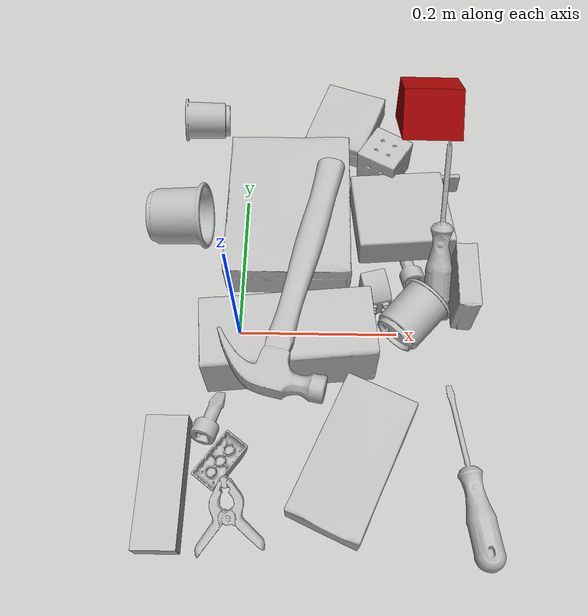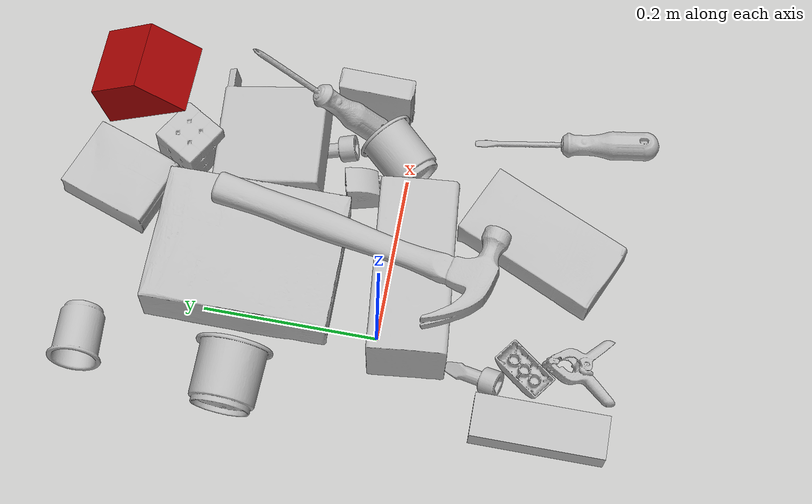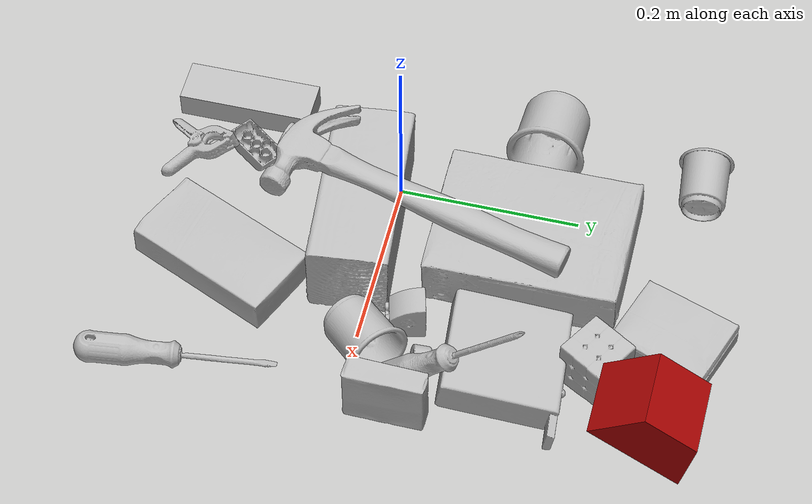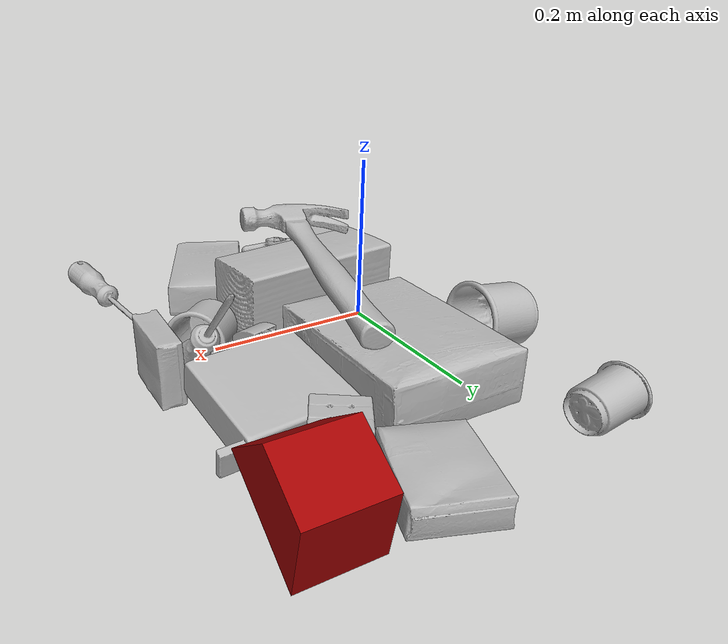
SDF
<sdf version="1.4">
  <world name="default">
    <light name="light1" type="point">
      <pose>0 0 1 0 0 0</pose>
      <diffuse>3 3 3 1</diffuse>
      <specular>3 3 3 1</specular>
    </light>
    <light name="light2" type="point">
      <pose>0 0.5 2 0 0 0</pose>
      <diffuse>1 1 1 1</diffuse>
      <specular>1 1 1 1</specular>
    </light>
    <light name="light3" type="point">
      <pose>0 0.5 2 0 0 0</pose>
      <diffuse>3 3 3 1</diffuse>
      <specular>3 3 3 1</specular>
    </light>
    <scene>
      <ambient>0.7 0.7 0.7</ambient>
    </scene>
    <model name="box21">
      <link name="link_box21">
        <collision name="default">
          <geometry>
            <mesh>
              <uri>model://cracker_box/collision_meshes/collision.obj</uri>
              <scale>1.0 1.0 1.0</scale>
            </mesh>
          </geometry>
          <surface>
            <friction>
              <ode>
                <mu>0.5</mu>
                <mu2>0.5</mu2>
              </ode>
            </friction>
          <contact>
        <ode>
            <max_vel>0</max_vel>
            <min_depth>0.0001</min_depth>
            <kp>1e8</kp>
        </ode>
    </contact></surface>
        </collision>
        <visual name="default">
          <geometry>
            <mesh>
              <uri>model://cracker_box/visual_meshes/visual.dae</uri>
              <scale>1.0 1.0 1.0</scale>
            </mesh>
          </geometry>
        </visual>
        <inertial>
          <mass>1.1849639415740967</mass>
          <pose>0.0009464144241064787 0.0002543424488976598 -0.0017029534792527556 -0.0003162077682631379 -0.011106487737543453 0.002546794536785776</pose>
          <inertia>
            <ixx>0.0030140192</ixx>
            <iyy>0.004976738</iyy>
            <izz>0.007102261</izz>
            <ixy>0</ixy>
            <ixz>0</ixz>
            <iyz>0</iyz>
          </inertia>
        </inertial>
      </link>
      <pose>0.0587424673140049 0.1605854034423828 0.03553144633769989 3.1371978265189875 -0.016544547677411713 1.5762706367182189</pose>
    </model>
    <model name="box22">
      <link name="link_box22">
        <collision name="default">
          <geometry>
            <mesh>
              <uri>model://rubiks_cube/collision_meshes/collision.obj</uri>
              <scale>1.0 1.0 1.0</scale>
            </mesh>
          </geometry>
          <surface>
            <friction>
              <ode>
                <mu>0.5</mu>
                <mu2>0.5</mu2>
              </ode>
            </friction>
          <contact>
        <ode>
            <max_vel>0</max_vel>
            <min_depth>0.0001</min_depth>
            <kp>1e8</kp>
        </ode>
    </contact></surface>
        </collision>
        <visual name="default">
          <geometry>
            <mesh>
              <uri>model://rubiks_cube/visual_meshes/visual.dae</uri>
              <scale>1.0 1.0 1.0</scale>
            </mesh>
          </geometry>
        </visual>
        <inertial>
          <mass>0.10796652734279633</mass>
          <pose>2.6721041649580002e-05 5.2569666877388954e-05 -7.264316082000732e-06 -0.054672548620525036 -0.09813983330627576 -0.03445544186372042</pose>
          <inertia>
            <ixx>5.965876e-05</ixx>
            <iyy>5.9380527e-05</iyy>
            <izz>6.0153117e-05</izz>
            <ixy>0</ixy>
            <ixz>0</ixz>
            <iyz>0</iyz>
          </inertia>
        </inertial>
      </link>
      <pose>0.19010089337825775 0.255538672208786 0.029275162145495415 -1.3337442127458556 -1.5352333185724516 2.380018414713204</pose>
    </model>
    <model name="box23">
      <link name="link_box23">
        <collision name="default">
          <geometry>
            <mesh>
              <uri>model://sugar_box/collision_meshes/collision.obj</uri>
              <scale>1.0 1.0 1.0</scale>
            </mesh>
          </geometry>
          <surface>
            <friction>
              <ode>
                <mu>0.5</mu>
                <mu2>0.5</mu2>
              </ode>
            </friction>
          <contact>
        <ode>
            <max_vel>0</max_vel>
            <min_depth>0.0001</min_depth>
            <kp>1e8</kp>
        </ode>
    </contact></surface>
        </collision>
        <visual name="default">
          <geometry>
            <mesh>
              <uri>model://sugar_box/visual_meshes/visual.dae</uri>
              <scale>1.0 1.0 1.0</scale>
            </mesh>
          </geometry>
        </visual>
        <inertial>
          <mass>0.8519012928009033</mass>
          <pose>0.0010343727190047503 3.8491099985549226e-05 -0.0003636480832938105 -0.00040462606756407727 0.0010506635218583888 0.002615378789044619</pose>
          <inertia>
            <ixx>0.00070980185</ixx>
            <iyy>0.0022942254</iyy>
            <izz>0.0027464617</izz>
            <ixy>0</ixy>
            <ixz>0</ixz>
            <iyz>0</iyz>
          </inertia>
        </inertial>
      </link>
      <pose>0.1407392919063568 -0.1656554937362671 0.022798603400588036 0.0007759348871800157 -0.023433483180987747 1.141716729516242</pose>
    </model>
    <model name="cup1">
      <link name="link_cup1">
        <collision name="default">
          <geometry>
            <mesh>
              <uri>model://b_cups/collision_meshes/collision.obj</uri>
              <scale>1.0 1.0 1.0</scale>
            </mesh>
          </geometry>
          <surface>
            <friction>
              <ode>
                <mu>0.5</mu>
                <mu2>0.5</mu2>
              </ode>
            </friction>
          <contact>
        <ode>
            <max_vel>0</max_vel>
            <min_depth>0.0001</min_depth>
            <kp>1e8</kp>
        </ode>
    </contact></surface>
        </collision>
        <visual name="default">
          <geometry>
            <mesh>
              <uri>model://b_cups/visual_meshes/visual.dae</uri>
              <scale>1.0 1.0 1.0</scale>
            </mesh>
          </geometry>
        </visual>
        <inertial>
          <mass>0.025879299268126488</mass>
          <pose>0.0005181999877095222 0.0018058597343042493 -0.0013381816679611802 0.11356295314662153 0.03872538879904025 -0.34569789869984097</pose>
          <inertia>
            <ixx>1.6939814e-05</ixx>
            <iyy>1.6618207e-05</iyy>
            <izz>1.4254532e-05</izz>
            <ixy>0</ixy>
            <ixz>0</ixz>
            <iyz>0</iyz>
          </inertia>
        </inertial>
      </link>
      <pose>-0.06464175879955292 0.32677730917930603 0.027630647644400597 -1.4758386567419397 -0.14059730232280093 1.629894968849007</pose>
    </model>
    <model name="cup2">
      <link name="link_cup2">
        <collision name="default">
          <geometry>
            <mesh>
              <uri>model://g_cups/collision_meshes/collision.obj</uri>
              <scale>1.0 1.0 1.0</scale>
            </mesh>
          </geometry>
          <surface>
            <friction>
              <ode>
                <mu>0.5</mu>
                <mu2>0.5</mu2>
              </ode>
            </friction>
          <contact>
        <ode>
            <max_vel>0</max_vel>
            <min_depth>0.0001</min_depth>
            <kp>1e8</kp>
        </ode>
    </contact></surface>
        </collision>
        <visual name="default">
          <geometry>
            <mesh>
              <uri>model://g_cups/visual_meshes/visual.dae</uri>
              <scale>1.0 1.0 1.0</scale>
            </mesh>
          </geometry>
        </visual>
        <inertial>
          <mass>0.06683293730020523</mass>
          <pose>-0.0007946278783492744 -4.206685844110325e-05 -0.002132937777787447 -0.21382591566164685 -0.31410327542238353 0.3112138520870617</pose>
          <inertia>
            <ixx>7.8009005e-05</ixx>
            <iyy>7.7743636e-05</iyy>
            <izz>8.080389e-05</izz>
            <ixy>0</ixy>
            <ixz>0</ixz>
            <iyz>0</iyz>
          </inertia>
        </inertial>
      </link>
      <pose>-0.08617715537548065 0.15125757455825806 0.03995315730571747 1.4108299623303129 0.8619906602930535 1.4163637283151382</pose>
    </model>
    <model name="box11">
      <link name="link_box11">
        <collision name="default">
          <geometry>
            <mesh>
              <uri>model://wood_block/collision_meshes/collision.obj</uri>
              <scale>1.0 1.0 1.0</scale>
            </mesh>
          </geometry>
          <surface>
            <friction>
              <ode>
                <mu>0.5</mu>
                <mu2>0.5</mu2>
              </ode>
            </friction>
          <contact>
        <ode>
            <max_vel>0</max_vel>
            <min_depth>0.0001</min_depth>
            <kp>1e8</kp>
        </ode>
    </contact></surface>
        </collision>
        <visual name="default">
          <geometry>
            <mesh>
              <uri>model://wood_block/visual_meshes/visual.dae</uri>
              <scale>1.0 1.0 1.0</scale>
            </mesh>
          </geometry>
        </visual>
        <inertial>
          <mass>0.9227498173713684</mass>
          <pose>-5.813315056002466e-06 -0.0005708094104193151 0.0002640858292579651 -0.05221074847543751 -0.005192695234575722 -0.00686137748598008</pose>
          <inertia>
            <ixx>0.001234779</ixx>
            <iyy>0.0039006667</iyy>
            <izz>0.0038860766</izz>
            <ixy>0</ixy>
            <ixz>0</ixz>
            <iyz>0</iyz>
          </inertia>
        </inertial>
      </link>
      <pose>0.06400096416473389 -0.028214307501912117 0.04525861516594887 -0.005212871383517134 0.0057173105616657146 0.09947521429393605</pose>
    </model>
    <model name="box12">
      <link name="link_box12">
        <collision name="default">
          <geometry>
            <mesh>
              <uri>model://pudding_box/collision_meshes/collision.obj</uri>
              <scale>1.0 1.0 1.0</scale>
            </mesh>
          </geometry>
          <surface>
            <friction>
              <ode>
                <mu>0.5</mu>
                <mu2>0.5</mu2>
              </ode>
            </friction>
          <contact>
        <ode>
            <max_vel>0</max_vel>
            <min_depth>0.0001</min_depth>
            <kp>1e8</kp>
        </ode>
    </contact></surface>
        </collision>
        <visual name="default">
          <geometry>
            <mesh>
              <uri>model://pudding_box/visual_meshes/visual.dae</uri>
              <scale>1.0 1.0 1.0</scale>
            </mesh>
          </geometry>
        </visual>
        <inertial>
          <mass>0.23326139152050018</mass>
          <pose>0.0004894821904599667 0.0008067885646596551 -0.0005188827635720372 0.0052131032034861725 -0.006603797335681708 0.02007982515858456</pose>
          <inertia>
            <ixx>0.00026369</ixx>
            <iyy>0.00017741251</iyy>
            <izz>0.00038940719</izz>
            <ixy>0</ixy>
            <ixz>0</ixz>
            <iyz>0</iyz>
          </inertia>
        </inertial>
      </link>
      <pose>0.13648560643196106 0.32836875319480896 0.018660489469766617 3.1339831934441387 -0.02695221931694549 -0.34305914143917343</pose>
    </model>
    <model name="box13">
      <link name="link_box13">
        <collision name="default">
          <geometry>
            <mesh>
              <uri>model://gelatin_box/collision_meshes/collision.obj</uri>
              <scale>1.0 1.0 1.0</scale>
            </mesh>
          </geometry>
          <surface>
            <friction>
              <ode>
                <mu>0.5</mu>
                <mu2>0.5</mu2>
              </ode>
            </friction>
          <contact>
        <ode>
            <max_vel>0</max_vel>
            <min_depth>0.0001</min_depth>
            <kp>1e8</kp>
        </ode>
    </contact></surface>
        </collision>
        <visual name="default">
          <geometry>
            <mesh>
              <uri>model://gelatin_box/visual_meshes/visual.dae</uri>
              <scale>1.0 1.0 1.0</scale>
            </mesh>
          </geometry>
        </visual>
        <inertial>
          <mass>0.0997389405965805</mass>
          <pose>0.0004319618456065655 0.00011156871187267825 -0.0003640321083366871 -0.001050372080915675 -0.004755817759010177 0.0164405576084854</pose>
          <inertia>
            <ixx>7.040755e-05</ixx>
            <iyy>5.0291743e-05</iyy>
            <izz>0.000107175976</izz>
            <ixy>0</ixy>
            <ixz>0</ixz>
            <iyz>0</iyz>
          </inertia>
        </inertial>
      </link>
      <pose>0.28463244438171387 0.05203922465443611 0.03674674779176712 -1.5989257261416692 1.5636373132603254 -1.6203487698466532</pose>
    </model>
    <model name="box14">
      <link name="link_box14">
        <collision name="default">
          <geometry>
            <mesh>
              <uri>model://jenga/collision_meshes/collision.obj</uri>
              <scale>1.0 1.0 1.0</scale>
            </mesh>
          </geometry>
          <surface>
            <friction>
              <ode>
                <mu>0.5</mu>
                <mu2>0.5</mu2>
              </ode>
            </friction>
          <contact>
        <ode>
            <max_vel>0</max_vel>
            <min_depth>0.0001</min_depth>
            <kp>1e8</kp>
        </ode>
    </contact></surface>
        </collision>
        <visual name="default">
          <geometry>
            <mesh>
              <uri>model://jenga/visual_meshes/visual.dae</uri>
              <scale>1.0 1.0 1.0</scale>
            </mesh>
          </geometry>
        </visual>
        <inertial>
          <mass>0.23366476595401764</mass>
          <pose>-2.502855807051674e-07 -0.0001025000965455547 -4.092339804628864e-05 0.0 -7.34215461761844e-07 0.0</pose>
          <inertia>
            <ixx>6.466071e-05</ixx>
            <iyy>0.0004381392</iyy>
            <izz>0.00046775083</izz>
            <ixy>0</ixy>
            <ixz>0</ixz>
            <iyz>0</iyz>
          </inertia>
        </inertial>
      </link>
      <pose>-0.0753955990076065 -0.1942754089832306 0.015000000596046448 1.3846723930506177e-08 -3.2887712240681595e-09 1.5707191304136778</pose>
    </model>
    <model name="cup15">
      <link name="link_cup15">
        <collision name="default">
          <geometry>
            <mesh>
              <uri>model://d_cups/collision_meshes/collision.obj</uri>
              <scale>1.0 1.0 1.0</scale>
            </mesh>
          </geometry>
          <surface>
            <friction>
              <ode>
                <mu>0.5</mu>
                <mu2>0.5</mu2>
              </ode>
            </friction>
          <contact>
        <ode>
            <max_vel>0</max_vel>
            <min_depth>0.0001</min_depth>
            <kp>1e8</kp>
        </ode>
    </contact></surface>
        </collision>
        <visual name="default">
          <geometry>
            <mesh>
              <uri>model://d_cups/visual_meshes/visual.dae</uri>
              <scale>1.0 1.0 1.0</scale>
            </mesh>
          </geometry>
        </visual>
        <inertial>
          <mass>0.05354860797524452</mass>
          <pose>0.000806806143373251 0.001911740517243743 -0.002266649389639497 0.240133395025133 -0.24708811164710584 0.5942101592185234</pose>
          <inertia>
            <ixx>4.4832785e-05</ixx>
            <iyy>4.470303e-05</iyy>
            <izz>4.0581297e-05</izz>
            <ixy>0</ixy>
            <ixz>0</ixz>
            <iyz>0</iyz>
          </inertia>
        </inertial>
      </link>
      <pose>0.2157023698091507 0.01040874794125557 0.032413240522146225 1.3026228375209787 1.222303314865107 2.1502581061396593</pose>
    </model>
    <model name="toy1">
      <link name="link_toy1">
        <collision name="default">
          <geometry>
            <mesh>
              <uri>model://d_toy_airplane/collision_meshes/collision.obj</uri>
              <scale>1.0 1.0 1.0</scale>
            </mesh>
          </geometry>
          <surface>
            <friction>
              <ode>
                <mu>0.5</mu>
                <mu2>0.5</mu2>
              </ode>
            </friction>
          <contact>
        <ode>
            <max_vel>0</max_vel>
            <min_depth>0.0001</min_depth>
            <kp>1e8</kp>
        </ode>
    </contact></surface>
        </collision>
        <visual name="default">
          <geometry>
            <mesh>
              <uri>model://d_toy_airplane/visual_meshes/visual.dae</uri>
              <scale>1.0 1.0 1.0</scale>
            </mesh>
          </geometry>
        </visual>
        <inertial>
          <mass>0.01055214088410139</mass>
          <pose>9.410294296685606e-05 -5.809328649775125e-05 -0.011728094890713692 0.00026701540047293157 0.004678982739479609 0.5194739606880012</pose>
          <inertia>
            <ixx>3.1633276e-06</ixx>
            <iyy>3.1657132e-06</iyy>
            <izz>9.55029e-07</izz>
            <ixy>0</ixy>
            <ixz>0</ixz>
            <iyz>0</iyz>
          </inertia>
        </inertial>
      </link>
      <pose>0.21781529486179352 0.09700114279985428 0.011039802804589272 -2.5651516519892494 -1.2876654546049937 1.1769771543504608</pose>
    </model>
    <model name="toy2">
      <link name="link_toy2">
        <collision name="default">
          <geometry>
            <mesh>
              <uri>model://d_lego_duplo/collision_meshes/collision.obj</uri>
              <scale>1.0 1.0 1.0</scale>
            </mesh>
          </geometry>
          <surface>
            <friction>
              <ode>
                <mu>0.5</mu>
                <mu2>0.5</mu2>
              </ode>
            </friction>
          <contact>
        <ode>
            <max_vel>0</max_vel>
            <min_depth>0.0001</min_depth>
            <kp>1e8</kp>
        </ode>
    </contact></surface>
        </collision>
        <visual name="default">
          <geometry>
            <mesh>
              <uri>model://d_lego_duplo/visual_meshes/visual.dae</uri>
              <scale>1.0 1.0 1.0</scale>
            </mesh>
          </geometry>
        </visual>
        <inertial>
          <mass>0.039816875010728836</mass>
          <pose>0.0028305640444159508 0.00016366131603717804 0.000858980929479003 0.08010950238605453 -0.3835521959243733 0.0010296761363168562</pose>
          <inertia>
            <ixx>7.70796e-06</ixx>
            <iyy>1.0939688e-05</iyy>
            <izz>1.0549791e-05</izz>
            <ixy>0</ixy>
            <ixz>0</ixz>
            <iyz>0</iyz>
          </inertia>
        </inertial>
      </link>
      <pose>0.1728188544511795 0.0467447005212307 0.024197012186050415 1.834142773074687 1.5707893037039906 0.5215724032087291</pose>
    </model>
    <model name="toy3">
      <link name="link_toy3">
        <collision name="default">
          <geometry>
            <mesh>
              <uri>model://nine_hole_peg_test/collision_meshes/collision.obj</uri>
              <scale>1.0 1.0 1.0</scale>
            </mesh>
          </geometry>
          <surface>
            <friction>
              <ode>
                <mu>0.5</mu>
                <mu2>0.5</mu2>
              </ode>
            </friction>
          <contact>
        <ode>
            <max_vel>0</max_vel>
            <min_depth>0.0001</min_depth>
            <kp>1e8</kp>
        </ode>
    </contact></surface>
        </collision>
        <visual name="default">
          <geometry>
            <mesh>
              <uri>model://nine_hole_peg_test/visual_meshes/visual.dae</uri>
              <scale>1.0 1.0 1.0</scale>
            </mesh>
          </geometry>
        </visual>
        <inertial>
          <mass>0.7048692107200623</mass>
          <pose>-0.0046173869632184505 -0.009647614322602749 2.6460689696250483e-05 -0.0014666794682547425 0.0007194190753660851 -0.6342416580414534</pose>
          <inertia>
            <ixx>0.0011021789</ixx>
            <iyy>0.0010290928</iyy>
            <izz>0.0019313421</izz>
            <ixy>0</ixy>
            <ixz>0</ixz>
            <iyz>0</iyz>
          </inertia>
        </inertial>
      </link>
      <pose>0.2194277048110962 0.16816093027591705 0.028928011655807495 -3.1366189159375946 0.16060659216256315 1.6488324267477779</pose>
    </model>
    <model name="toy4">
      <link name="link_toy4">
        <collision name="default">
          <geometry>
            <mesh>
              <uri>model://a_lego_duplo/collision_meshes/collision.obj</uri>
              <scale>1.0 1.0 1.0</scale>
            </mesh>
          </geometry>
          <surface>
            <friction>
              <ode>
                <mu>0.5</mu>
                <mu2>0.5</mu2>
              </ode>
            </friction>
          <contact>
        <ode>
            <max_vel>0</max_vel>
            <min_depth>0.0001</min_depth>
            <kp>1e8</kp>
        </ode>
    </contact></surface>
        </collision>
        <visual name="default">
          <geometry>
            <mesh>
              <uri>model://a_lego_duplo/visual_meshes/visual.dae</uri>
              <scale>1.0 1.0 1.0</scale>
            </mesh>
          </geometry>
        </visual>
        <inertial>
          <mass>0.021006127819418907</mass>
          <pose>-0.00011337678006384522 0.00018517556600272655 0.0003692602913361043 -0.014116980161978756 -0.00012565077681184441 6.142327078429463e-05</pose>
          <inertia>
            <ixx>2.6931523e-06</ixx>
            <iyy>6.033251e-06</iyy>
            <izz>7.473524e-06</izz>
            <ixy>0</ixy>
            <ixz>0</ixz>
            <iyz>0</iyz>
          </inertia>
        </inertial>
      </link>
      <pose>-0.011340904049575329 -0.16878126561641693 0.0121248047798872 -3.1412831334701505 -0.015582250931443272 0.9229538042891118</pose>
    </model>
    <model name="toy5">
      <link name="link_toy5">
        <collision name="default">
          <geometry>
            <mesh>
              <uri>model://e_toy_airplane/collision_meshes/collision.obj</uri>
              <scale>1.0 1.0 1.0</scale>
            </mesh>
          </geometry>
          <surface>
            <friction>
              <ode>
                <mu>0.5</mu>
                <mu2>0.5</mu2>
              </ode>
            </friction>
          <contact>
        <ode>
            <max_vel>0</max_vel>
            <min_depth>0.0001</min_depth>
            <kp>1e8</kp>
        </ode>
    </contact></surface>
        </collision>
        <visual name="default">
          <geometry>
            <mesh>
              <uri>model://e_toy_airplane/visual_meshes/visual.dae</uri>
              <scale>1.0 1.0 1.0</scale>
            </mesh>
          </geometry>
        </visual>
        <inertial>
          <mass>0.02451101876795292</mass>
          <pose>0.00011740468471543863 -2.248291639261879e-05 -0.011187203228473663 0.00551850103187323 0.009228285956806933 0.150416364683818</pose>
          <inertia>
            <ixx>7.481042e-06</ixx>
            <iyy>7.4045165e-06</iyy>
            <izz>2.2483475e-06</izz>
            <ixy>0</ixy>
            <ixz>0</ixz>
            <iyz>0</iyz>
          </inertia>
        </inertial>
      </link>
      <pose>-0.02645011991262436 -0.11195214092731476 0.010808534920215607 -2.145139432692218 1.1027859136293559 -0.7890404879901253</pose>
    </model>
    <model name="toy6">
      <link name="link_toy6">
        <collision name="default">
          <geometry>
            <mesh>
              <uri>model://prism/collision_meshes/collision.obj</uri>
              <scale>1.0 1.0 1.0</scale>
            </mesh>
          </geometry>
          <surface>
            <friction>
              <ode>
                <mu>0.5</mu>
                <mu2>0.5</mu2>
              </ode>
            </friction>
          <contact>
        <ode>
            <max_vel>0</max_vel>
            <min_depth>0.0001</min_depth>
            <kp>1e8</kp>
        </ode>
    </contact></surface>
        </collision>
        <visual name="default">
          <geometry>
            <mesh>
              <uri>model://prism/visual_meshes/visual.dae</uri>
              <scale>1.0 1.0 1.0</scale>
            </mesh>
          </geometry>
        </visual>
        <inertial>
          <mass>0.639074981212616</mass>
          <pose>-9.85359656624496e-05 -4.96157269935793e-07 -0.003386910306289792 0.0 0.006559180766136186 0.0</pose>
          <inertia>
            <ixx>0.0005767573</ixx>
            <iyy>0.0006970186</iyy>
            <izz>0.0008537644</izz>
            <ixy>0</ixy>
            <ixz>0</ixz>
            <iyz>0</iyz>
          </inertia>
        </inertial>
      </link>
      <pose>0.25523608922958374 0.3320672810077667 0.05882339924573898 1.4845221952765582e-05 0.5728473023358035 1.5593945983462354</pose>
    </model>
    <model name="hardware1">
      <link name="link_hardware1">
        <collision name="default">
          <geometry>
            <mesh>
              <uri>model://medium_clamp/collision_meshes/collision.obj</uri>
              <scale>1.0 1.0 1.0</scale>
            </mesh>
          </geometry>
          <surface>
            <friction>
              <ode>
                <mu>0.5</mu>
                <mu2>0.5</mu2>
              </ode>
            </friction>
          <contact>
        <ode>
            <max_vel>0</max_vel>
            <min_depth>0.0001</min_depth>
            <kp>1e8</kp>
        </ode>
    </contact></surface>
        </collision>
        <visual name="default">
          <geometry>
            <mesh>
              <uri>model://medium_clamp/visual_meshes/visual.dae</uri>
              <scale>1.0 1.0 1.0</scale>
            </mesh>
          </geometry>
        </visual>
        <inertial>
          <mass>0.01437164656817913</mass>
          <pose>0.005390993785113096 0.00039532355731353164 -0.0001222158025484532 -0.001226922255807767 0.0025845058861846287 0.038207728721457376</pose>
          <inertia>
            <ixx>3.9153533e-06</ixx>
            <iyy>5.697947e-06</iyy>
            <izz>8.776544e-06</izz>
            <ixy>0</ixy>
            <ixz>0</ixz>
            <iyz>0</iyz>
          </inertia>
        </inertial>
      </link>
      <pose>0.0011456701904535294 -0.23236355185508728 0.018360838294029236 3.135464409245783 -0.33031059474373564 1.6960037819493876</pose>
    </model>
    <model name="hardware2">
      <link name="link_hardware2">
        <collision name="default">
          <geometry>
            <mesh>
              <uri>model://hammer/collision_meshes/collision.obj</uri>
              <scale>1.0 1.0 1.0</scale>
            </mesh>
          </geometry>
          <surface>
            <friction>
              <ode>
                <mu>0.5</mu>
                <mu2>0.5</mu2>
              </ode>
            </friction>
          <contact>
        <ode>
            <max_vel>0</max_vel>
            <min_depth>0.0001</min_depth>
            <kp>1e8</kp>
        </ode>
    </contact></surface>
        </collision>
        <visual name="default">
          <geometry>
            <mesh>
              <uri>model://hammer/visual_meshes/visual.dae</uri>
              <scale>1.0 1.0 1.0</scale>
            </mesh>
          </geometry>
        </visual>
        <inertial>
          <mass>0.29233166575431824</mass>
          <pose>0.009415771812200546 -0.011892357841134071 -0.0001235063245985657 0.02315535385536088 -0.004792164028838156 -0.01276032390705471</pose>
          <inertia>
            <ixx>0.0001252207</ixx>
            <iyy>0.003393116</iyy>
            <izz>0.0034903311</izz>
            <ixy>0</ixy>
            <ixz>0</ixz>
            <iyz>0</iyz>
          </inertia>
        </inertial>
      </link>
      <pose>0.06622104346752167 0.03339800238609314 0.09988110512495041 3.129904609712766 -0.07947972414333011 -1.786359381222675</pose>
    </model>
    <model name="hardware3">
      <link name="link_hardware3">
        <collision name="default">
          <geometry>
            <mesh>
              <uri>model://phillips_screwdriver/collision_meshes/collision.obj</uri>
              <scale>1.0 1.0 1.0</scale>
            </mesh>
          </geometry>
          <surface>
            <friction>
              <ode>
                <mu>0.5</mu>
                <mu2>0.5</mu2>
              </ode>
            </friction>
          <contact>
        <ode>
            <max_vel>0</max_vel>
            <min_depth>0.0001</min_depth>
            <kp>1e8</kp>
        </ode>
    </contact></surface>
        </collision>
        <visual name="default">
          <geometry>
            <mesh>
              <uri>model://phillips_screwdriver/visual_meshes/visual.dae</uri>
              <scale>1.0 1.0 1.0</scale>
            </mesh>
          </geometry>
        </visual>
        <inertial>
          <mass>0.11685379594564438</mass>
          <pose>-0.04777182638645172 0.0010362302418798208 -0.0004555549821816385 -0.15721778382646787 0.005850995328295584 -0.002156740385256481</pose>
          <inertia>
            <ixx>1.3729124e-05</ixx>
            <iyy>0.00017213916</iyy>
            <izz>0.00017228544</izz>
            <ixy>0</ixy>
            <ixz>0</ixz>
            <iyz>0</iyz>
          </inertia>
        </inertial>
      </link>
      <pose>0.25461307168006897 0.11009857058525085 0.078159399330616 1.3103296880660242 -0.779833904824849 1.5397414443751942</pose>
    </model>
    <model name="hardware4">
      <link name="link_hardware4">
        <collision name="default">
          <geometry>
            <mesh>
              <uri>model://flat_screwdriver/collision_meshes/collision.obj</uri>
              <scale>1.0 1.0 1.0</scale>
            </mesh>
          </geometry>
          <surface>
            <friction>
              <ode>
                <mu>0.5</mu>
                <mu2>0.5</mu2>
              </ode>
            </friction>
          <contact>
        <ode>
            <max_vel>0</max_vel>
            <min_depth>0.0001</min_depth>
            <kp>1e8</kp>
        </ode>
    </contact></surface>
        </collision>
        <visual name="default">
          <geometry>
            <mesh>
              <uri>model://flat_screwdriver/visual_meshes/visual.dae</uri>
              <scale>1.0 1.0 1.0</scale>
            </mesh>
          </geometry>
        </visual>
        <inertial>
          <mass>0.10915977507829666</mass>
          <pose>-0.0489187091588974 -0.0006576799787580967 -0.000614091579336673 -0.5614402636475724 -0.003233725963840683 0.006982283174401888</pose>
          <inertia>
            <ixx>1.2897148e-05</ixx>
            <iyy>0.0001637322</iyy>
            <izz>0.00016365637</izz>
            <ixy>0</ixy>
            <ixz>0</ixz>
            <iyz>0</iyz>
          </inertia>
        </inertial>
      </link>
      <pose>0.2763352394104004 -0.17924313247203827 0.014493227005004883 2.8802532158771106 0.035603246003238935 1.7238970545117902</pose>
    </model>
  <physics type="ode">
      <max_contacts>50</max_contacts>
      <ode>
        <solver>
          <type>quick</type>
          <iters>75</iters>
        </solver>
        <constraints>
          <contact_max_correcting_vel>0</contact_max_correcting_vel>
          <contact_surface_layer>0</contact_surface_layer>
        </constraints>
      </ode>
    </physics></world>
</sdf>
